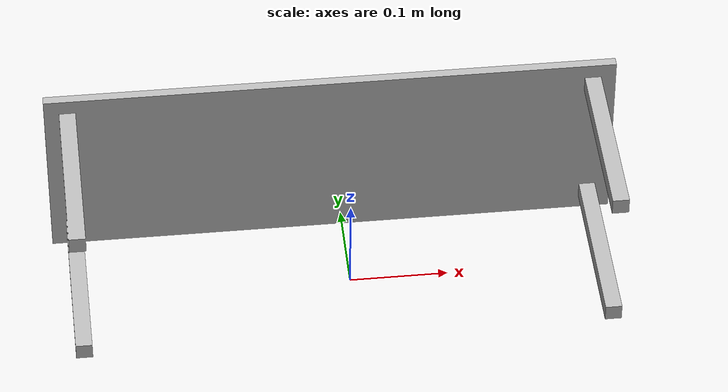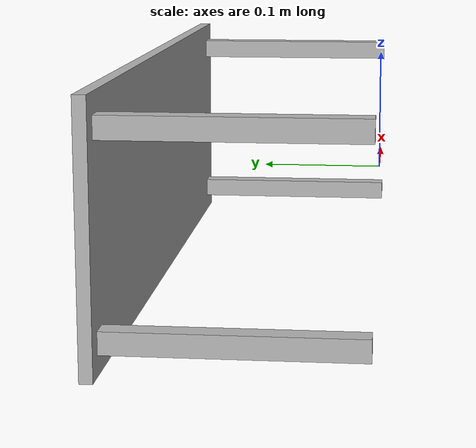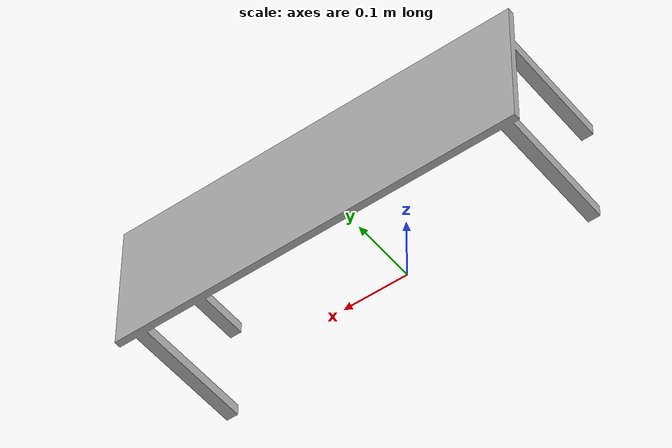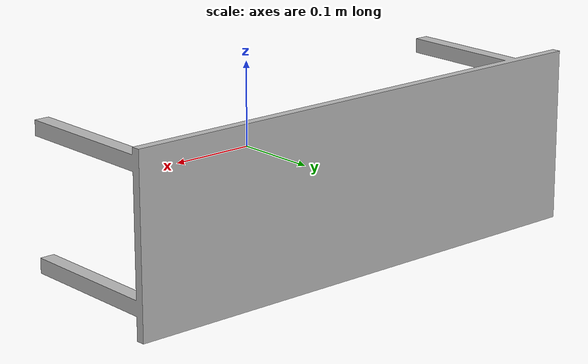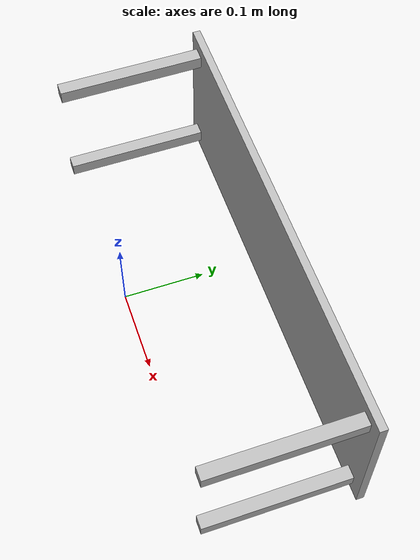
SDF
<?xml version="1.0" ?>
<sdf version="1.9">
  <model name="remeshes_gazebo">
    <static>true</static>
    <link name="Table_link">
      <pose>0.000000 0.000000 0.000000 0.000000 0.000000 0.000000</pose>
      <visual name="Table_visual">
        <geometry>
          <mesh>
            <uri>meshes/Table.obj</uri>
            <scale>0.001 0.001 0.001</scale>
          </mesh>
        </geometry>
      </visual>
      <collision name="Table_collision">
        <geometry>
          <mesh>
            <uri>meshes/Table_col.obj</uri>
            <scale>0.001 0.001 0.001</scale>
          </mesh>
        </geometry>
      </collision>
    </link>
  </model>
</sdf>
